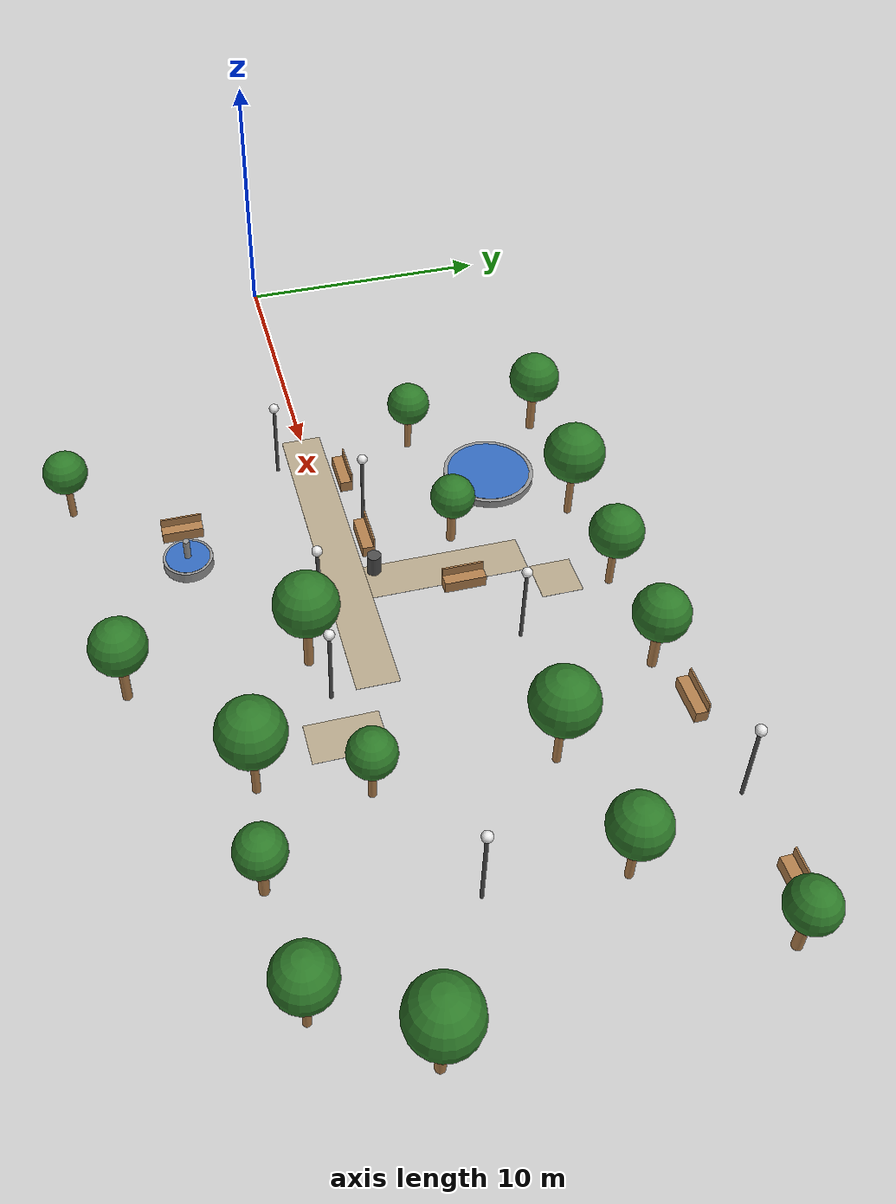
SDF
<sdf version="1.6">
 <world name="default">
  <include><uri>model://sun</uri></include>
  <model name="trees">
   <static>true</static>
   <link name="trunk_0">
    <pose>11.3 4.0 0.8 0 0 0</pose>
    <collision name="collision">
     <geometry><cylinder><radius>0.13</radius><length>1.6</length></cylinder></geometry>
     <surface><friction><ode><mu>0.05</mu><mu2>0.05</mu2></ode></friction></surface>
    </collision>
    <visual name="visual">
     <geometry><cylinder><radius>0.13</radius><length>1.6</length></cylinder></geometry>
     <material>
      <script><uri>file://media/materials/scripts/gazebo.material</uri><name>Gazebo/Wood</name></script>
     </material>
    </visual>
   </link>
   <link name="canopy_0">
    <pose>11.3 4.0 2.1 0 0 0</pose>
    <collision name="collision">
     <geometry><sphere><radius>0.8</radius></sphere></geometry>
     <surface><friction><ode><mu>0.05</mu><mu2>0.05</mu2></ode></friction></surface>
    </collision>
    <visual name="visual">
     <geometry><sphere><radius>0.8</radius></sphere></geometry>
     <material>
      <ambient>0.18 0.48 0.16 1</ambient>
      <diffuse>0.18 0.48 0.16 1</diffuse>
      <specular>0.05 0.05 0.05 1</specular>
     </material>
    </visual>
   </link>
   <link name="trunk_1">
    <pose>11.4 9.0 1.0 0 0 0</pose>
    <collision name="collision">
     <geometry><cylinder><radius>0.16</radius><length>2.0</length></cylinder></geometry>
     <surface><friction><ode><mu>0.05</mu><mu2>0.05</mu2></ode></friction></surface>
    </collision>
    <visual name="visual">
     <geometry><cylinder><radius>0.16</radius><length>2.0</length></cylinder></geometry>
     <material>
      <script><uri>file://media/materials/scripts/gazebo.material</uri><name>Gazebo/Wood</name></script>
     </material>
    </visual>
   </link>
   <link name="canopy_1">
    <pose>11.4 9.0 2.5 0 0 0</pose>
    <collision name="collision">
     <geometry><sphere><radius>0.9500000000000001</radius></sphere></geometry>
     <surface><friction><ode><mu>0.05</mu><mu2>0.05</mu2></ode></friction></surface>
    </collision>
    <visual name="visual">
     <geometry><sphere><radius>0.9500000000000001</radius></sphere></geometry>
     <material>
      <ambient>0.18 0.48 0.16 1</ambient>
      <diffuse>0.18 0.48 0.16 1</diffuse>
      <specular>0.05 0.05 0.05 1</specular>
     </material>
    </visual>
   </link>
   <link name="trunk_2">
    <pose>16.3 8.8 1.2000000000000002 0 0 0</pose>
    <collision name="collision">
     <geometry><cylinder><radius>0.13</radius><length>2.4000000000000004</length></cylinder></geometry>
     <surface><friction><ode><mu>0.05</mu><mu2>0.05</mu2></ode></friction></surface>
    </collision>
    <visual name="visual">
     <geometry><cylinder><radius>0.13</radius><length>2.4000000000000004</length></cylinder></geometry>
     <material>
      <script><uri>file://media/materials/scripts/gazebo.material</uri><name>Gazebo/Wood</name></script>
     </material>
    </visual>
   </link>
   <link name="canopy_2">
    <pose>16.3 8.8 2.9000000000000004 0 0 0</pose>
    <collision name="collision">
     <geometry><sphere><radius>1.1</radius></sphere></geometry>
     <surface><friction><ode><mu>0.05</mu><mu2>0.05</mu2></ode></friction></surface>
    </collision>
    <visual name="visual">
     <geometry><sphere><radius>1.1</radius></sphere></geometry>
     <material>
      <ambient>0.18 0.48 0.16 1</ambient>
      <diffuse>0.18 0.48 0.16 1</diffuse>
      <specular>0.05 0.05 0.05 1</specular>
     </material>
    </visual>
   </link>
   <link name="trunk_3">
    <pose>16.6 4.2 0.8 0 0 0</pose>
    <collision name="collision">
     <geometry><cylinder><radius>0.16</radius><length>1.6</length></cylinder></geometry>
     <surface><friction><ode><mu>0.05</mu><mu2>0.05</mu2></ode></friction></surface>
    </collision>
    <visual name="visual">
     <geometry><cylinder><radius>0.16</radius><length>1.6</length></cylinder></geometry>
     <material>
      <script><uri>file://media/materials/scripts/gazebo.material</uri><name>Gazebo/Wood</name></script>
     </material>
    </visual>
   </link>
   <link name="canopy_3">
    <pose>16.6 4.2 2.1 0 0 0</pose>
    <collision name="collision">
     <geometry><sphere><radius>0.8</radius></sphere></geometry>
     <surface><friction><ode><mu>0.05</mu><mu2>0.05</mu2></ode></friction></surface>
    </collision>
    <visual name="visual">
     <geometry><sphere><radius>0.8</radius></sphere></geometry>
     <material>
      <ambient>0.18 0.48 0.16 1</ambient>
      <diffuse>0.18 0.48 0.16 1</diffuse>
      <specular>0.05 0.05 0.05 1</specular>
     </material>
    </visual>
   </link>
   <link name="trunk_4">
    <pose>20.0 9.0 1.0 0 0 0</pose>
    <collision name="collision">
     <geometry><cylinder><radius>0.13</radius><length>2.0</length></cylinder></geometry>
     <surface><friction><ode><mu>0.05</mu><mu2>0.05</mu2></ode></friction></surface>
    </collision>
    <visual name="visual">
     <geometry><cylinder><radius>0.13</radius><length>2.0</length></cylinder></geometry>
     <material>
      <script><uri>file://media/materials/scripts/gazebo.material</uri><name>Gazebo/Wood</name></script>
     </material>
    </visual>
   </link>
   <link name="canopy_4">
    <pose>20.0 9.0 2.5 0 0 0</pose>
    <collision name="collision">
     <geometry><sphere><radius>0.9500000000000001</radius></sphere></geometry>
     <surface><friction><ode><mu>0.05</mu><mu2>0.05</mu2></ode></friction></surface>
    </collision>
    <visual name="visual">
     <geometry><sphere><radius>0.9500000000000001</radius></sphere></geometry>
     <material>
      <ambient>0.18 0.48 0.16 1</ambient>
      <diffuse>0.18 0.48 0.16 1</diffuse>
      <specular>0.05 0.05 0.05 1</specular>
     </material>
    </visual>
   </link>
   <link name="trunk_5">
    <pose>21.0 -2.0 1.2000000000000002 0 0 0</pose>
    <collision name="collision">
     <geometry><cylinder><radius>0.16</radius><length>2.4000000000000004</length></cylinder></geometry>
     <surface><friction><ode><mu>0.05</mu><mu2>0.05</mu2></ode></friction></surface>
    </collision>
    <visual name="visual">
     <geometry><cylinder><radius>0.16</radius><length>2.4000000000000004</length></cylinder></geometry>
     <material>
      <script><uri>file://media/materials/scripts/gazebo.material</uri><name>Gazebo/Wood</name></script>
     </material>
    </visual>
   </link>
   <link name="canopy_5">
    <pose>21.0 -2.0 2.9000000000000004 0 0 0</pose>
    <collision name="collision">
     <geometry><sphere><radius>1.1</radius></sphere></geometry>
     <surface><friction><ode><mu>0.05</mu><mu2>0.05</mu2></ode></friction></surface>
    </collision>
    <visual name="visual">
     <geometry><sphere><radius>1.1</radius></sphere></geometry>
     <material>
      <ambient>0.18 0.48 0.16 1</ambient>
      <diffuse>0.18 0.48 0.16 1</diffuse>
      <specular>0.05 0.05 0.05 1</specular>
     </material>
    </visual>
   </link>
   <link name="trunk_6">
    <pose>12.0 -9.0 0.8 0 0 0</pose>
    <collision name="collision">
     <geometry><cylinder><radius>0.13</radius><length>1.6</length></cylinder></geometry>
     <surface><friction><ode><mu>0.05</mu><mu2>0.05</mu2></ode></friction></surface>
    </collision>
    <visual name="visual">
     <geometry><cylinder><radius>0.13</radius><length>1.6</length></cylinder></geometry>
     <material>
      <script><uri>file://media/materials/scripts/gazebo.material</uri><name>Gazebo/Wood</name></script>
     </material>
    </visual>
   </link>
   <link name="canopy_6">
    <pose>12.0 -9.0 2.1 0 0 0</pose>
    <collision name="collision">
     <geometry><sphere><radius>0.8</radius></sphere></geometry>
     <surface><friction><ode><mu>0.05</mu><mu2>0.05</mu2></ode></friction></surface>
    </collision>
    <visual name="visual">
     <geometry><sphere><radius>0.8</radius></sphere></geometry>
     <material>
      <ambient>0.18 0.48 0.16 1</ambient>
      <diffuse>0.18 0.48 0.16 1</diffuse>
      <specular>0.05 0.05 0.05 1</specular>
     </material>
    </visual>
   </link>
   <link name="trunk_7">
    <pose>21.2 -8.0 1.2943009958726188 0 0 0</pose>
    <collision name="collision">
     <geometry><cylinder><radius>0.16</radius><length>2.0</length></cylinder></geometry>
     <surface><friction><ode><mu>0.05</mu><mu2>0.05</mu2></ode></friction></surface>
    </collision>
    <visual name="visual">
     <geometry><cylinder><radius>0.16</radius><length>2.0</length></cylinder></geometry>
     <material>
      <script><uri>file://media/materials/scripts/gazebo.material</uri><name>Gazebo/Wood</name></script>
     </material>
    </visual>
   </link>
   <link name="canopy_7">
    <pose>21.2 -8.0 2.794300995872619 0 0 0</pose>
    <collision name="collision">
     <geometry><sphere><radius>0.9500000000000001</radius></sphere></geometry>
     <surface><friction><ode><mu>0.05</mu><mu2>0.05</mu2></ode></friction></surface>
    </collision>
    <visual name="visual">
     <geometry><sphere><radius>0.9500000000000001</radius></sphere></geometry>
     <material>
      <ambient>0.18 0.48 0.16 1</ambient>
      <diffuse>0.18 0.48 0.16 1</diffuse>
      <specular>0.05 0.05 0.05 1</specular>
     </material>
    </visual>
   </link>
   <link name="trunk_8">
    <pose>25.6 -4.6 1.3576661332415842 0 0 0</pose>
    <collision name="collision">
     <geometry><cylinder><radius>0.13</radius><length>2.4000000000000004</length></cylinder></geometry>
     <surface><friction><ode><mu>0.05</mu><mu2>0.05</mu2></ode></friction></surface>
    </collision>
    <visual name="visual">
     <geometry><cylinder><radius>0.13</radius><length>2.4000000000000004</length></cylinder></geometry>
     <material>
      <script><uri>file://media/materials/scripts/gazebo.material</uri><name>Gazebo/Wood</name></script>
     </material>
    </visual>
   </link>
   <link name="canopy_8">
    <pose>25.6 -4.6 3.0576661332415846 0 0 0</pose>
    <collision name="collision">
     <geometry><sphere><radius>1.1</radius></sphere></geometry>
     <surface><friction><ode><mu>0.05</mu><mu2>0.05</mu2></ode></friction></surface>
    </collision>
    <visual name="visual">
     <geometry><sphere><radius>1.1</radius></sphere></geometry>
     <material>
      <ambient>0.18 0.48 0.16 1</ambient>
      <diffuse>0.18 0.48 0.16 1</diffuse>
      <specular>0.05 0.05 0.05 1</specular>
     </material>
    </visual>
   </link>
   <link name="trunk_9">
    <pose>29.0 -5.0 0.9609630261579654 0 0 0</pose>
    <collision name="collision">
     <geometry><cylinder><radius>0.16</radius><length>1.6</length></cylinder></geometry>
     <surface><friction><ode><mu>0.05</mu><mu2>0.05</mu2></ode></friction></surface>
    </collision>
    <visual name="visual">
     <geometry><cylinder><radius>0.16</radius><length>1.6</length></cylinder></geometry>
     <material>
      <script><uri>file://media/materials/scripts/gazebo.material</uri><name>Gazebo/Wood</name></script>
     </material>
    </visual>
   </link>
   <link name="canopy_9">
    <pose>29.0 -5.0 2.2609630261579654 0 0 0</pose>
    <collision name="collision">
     <geometry><sphere><radius>0.8</radius></sphere></geometry>
     <surface><friction><ode><mu>0.05</mu><mu2>0.05</mu2></ode></friction></surface>
    </collision>
    <visual name="visual">
     <geometry><sphere><radius>0.8</radius></sphere></geometry>
     <material>
      <ambient>0.18 0.48 0.16 1</ambient>
      <diffuse>0.18 0.48 0.16 1</diffuse>
      <specular>0.05 0.05 0.05 1</specular>
     </material>
    </visual>
   </link>
   <link name="trunk_10">
    <pose>33.0 -4.6 1.0379301743406173 0 0 0</pose>
    <collision name="collision">
     <geometry><cylinder><radius>0.13</radius><length>2.0</length></cylinder></geometry>
     <surface><friction><ode><mu>0.05</mu><mu2>0.05</mu2></ode></friction></surface>
    </collision>
    <visual name="visual">
     <geometry><cylinder><radius>0.13</radius><length>2.0</length></cylinder></geometry>
     <material>
      <script><uri>file://media/materials/scripts/gazebo.material</uri><name>Gazebo/Wood</name></script>
     </material>
    </visual>
   </link>
   <link name="canopy_10">
    <pose>33.0 -4.6 2.5379301743406173 0 0 0</pose>
    <collision name="collision">
     <geometry><sphere><radius>0.9500000000000001</radius></sphere></geometry>
     <surface><friction><ode><mu>0.05</mu><mu2>0.05</mu2></ode></friction></surface>
    </collision>
    <visual name="visual">
     <geometry><sphere><radius>0.9500000000000001</radius></sphere></geometry>
     <material>
      <ambient>0.18 0.48 0.16 1</ambient>
      <diffuse>0.18 0.48 0.16 1</diffuse>
      <specular>0.05 0.05 0.05 1</specular>
     </material>
    </visual>
   </link>
   <link name="trunk_11">
    <pose>35.0 -1.5 1.2000000000000002 0 0 0</pose>
    <collision name="collision">
     <geometry><cylinder><radius>0.16</radius><length>2.4000000000000004</length></cylinder></geometry>
     <surface><friction><ode><mu>0.05</mu><mu2>0.05</mu2></ode></friction></surface>
    </collision>
    <visual name="visual">
     <geometry><cylinder><radius>0.16</radius><length>2.4000000000000004</length></cylinder></geometry>
     <material>
      <script><uri>file://media/materials/scripts/gazebo.material</uri><name>Gazebo/Wood</name></script>
     </material>
    </visual>
   </link>
   <link name="canopy_11">
    <pose>35.0 -1.5 2.9000000000000004 0 0 0</pose>
    <collision name="collision">
     <geometry><sphere><radius>1.1</radius></sphere></geometry>
     <surface><friction><ode><mu>0.05</mu><mu2>0.05</mu2></ode></friction></surface>
    </collision>
    <visual name="visual">
     <geometry><sphere><radius>1.1</radius></sphere></geometry>
     <material>
      <ambient>0.18 0.48 0.16 1</ambient>
      <diffuse>0.18 0.48 0.16 1</diffuse>
      <specular>0.05 0.05 0.05 1</specular>
     </material>
    </visual>
   </link>
   <link name="trunk_12">
    <pose>26.5 -1.2 0.8 0 0 0</pose>
    <collision name="collision">
     <geometry><cylinder><radius>0.13</radius><length>1.6</length></cylinder></geometry>
     <surface><friction><ode><mu>0.05</mu><mu2>0.05</mu2></ode></friction></surface>
    </collision>
    <visual name="visual">
     <geometry><cylinder><radius>0.13</radius><length>1.6</length></cylinder></geometry>
     <material>
      <script><uri>file://media/materials/scripts/gazebo.material</uri><name>Gazebo/Wood</name></script>
     </material>
    </visual>
   </link>
   <link name="canopy_12">
    <pose>26.5 -1.2 2.1 0 0 0</pose>
    <collision name="collision">
     <geometry><sphere><radius>0.8</radius></sphere></geometry>
     <surface><friction><ode><mu>0.05</mu><mu2>0.05</mu2></ode></friction></surface>
    </collision>
    <visual name="visual">
     <geometry><sphere><radius>0.8</radius></sphere></geometry>
     <material>
      <ambient>0.18 0.48 0.16 1</ambient>
      <diffuse>0.18 0.48 0.16 1</diffuse>
      <specular>0.05 0.05 0.05 1</specular>
     </material>
    </visual>
   </link>
   <link name="trunk_13">
    <pose>24.2 8.8 1.5 0 0 0</pose>
    <collision name="collision">
     <geometry><cylinder><radius>0.16</radius><length>2.0</length></cylinder></geometry>
     <surface><friction><ode><mu>0.05</mu><mu2>0.05</mu2></ode></friction></surface>
    </collision>
    <visual name="visual">
     <geometry><cylinder><radius>0.16</radius><length>2.0</length></cylinder></geometry>
     <material>
      <script><uri>file://media/materials/scripts/gazebo.material</uri><name>Gazebo/Wood</name></script>
     </material>
    </visual>
   </link>
   <link name="canopy_13">
    <pose>24.2 8.8 3.0 0 0 0</pose>
    <collision name="collision">
     <geometry><sphere><radius>0.9500000000000001</radius></sphere></geometry>
     <surface><friction><ode><mu>0.05</mu><mu2>0.05</mu2></ode></friction></surface>
    </collision>
    <visual name="visual">
     <geometry><sphere><radius>0.9500000000000001</radius></sphere></geometry>
     <material>
      <ambient>0.18 0.48 0.16 1</ambient>
      <diffuse>0.18 0.48 0.16 1</diffuse>
      <specular>0.05 0.05 0.05 1</specular>
     </material>
    </visual>
   </link>
   <link name="trunk_14">
    <pose>27.0 4.5 1.7000000000000002 0 0 0</pose>
    <collision name="collision">
     <geometry><cylinder><radius>0.13</radius><length>2.4000000000000004</length></cylinder></geometry>
     <surface><friction><ode><mu>0.05</mu><mu2>0.05</mu2></ode></friction></surface>
    </collision>
    <visual name="visual">
     <geometry><cylinder><radius>0.13</radius><length>2.4000000000000004</length></cylinder></geometry>
     <material>
      <script><uri>file://media/materials/scripts/gazebo.material</uri><name>Gazebo/Wood</name></script>
     </material>
    </visual>
   </link>
   <link name="canopy_14">
    <pose>27.0 4.5 3.4000000000000004 0 0 0</pose>
    <collision name="collision">
     <geometry><sphere><radius>1.1</radius></sphere></geometry>
     <surface><friction><ode><mu>0.05</mu><mu2>0.05</mu2></ode></friction></surface>
    </collision>
    <visual name="visual">
     <geometry><sphere><radius>1.1</radius></sphere></geometry>
     <material>
      <ambient>0.18 0.48 0.16 1</ambient>
      <diffuse>0.18 0.48 0.16 1</diffuse>
      <specular>0.05 0.05 0.05 1</specular>
     </material>
    </visual>
   </link>
   <link name="trunk_15">
    <pose>34.6 8.6 1.8 0 0 0</pose>
    <collision name="collision">
     <geometry><cylinder><radius>0.16</radius><length>1.6</length></cylinder></geometry>
     <surface><friction><ode><mu>0.05</mu><mu2>0.05</mu2></ode></friction></surface>
    </collision>
    <visual name="visual">
     <geometry><cylinder><radius>0.16</radius><length>1.6</length></cylinder></geometry>
     <material>
      <script><uri>file://media/materials/scripts/gazebo.material</uri><name>Gazebo/Wood</name></script>
     </material>
    </visual>
   </link>
   <link name="canopy_15">
    <pose>34.6 8.6 3.1 0 0 0</pose>
    <collision name="collision">
     <geometry><sphere><radius>0.8</radius></sphere></geometry>
     <surface><friction><ode><mu>0.05</mu><mu2>0.05</mu2></ode></friction></surface>
    </collision>
    <visual name="visual">
     <geometry><sphere><radius>0.8</radius></sphere></geometry>
     <material>
      <ambient>0.18 0.48 0.16 1</ambient>
      <diffuse>0.18 0.48 0.16 1</diffuse>
      <specular>0.05 0.05 0.05 1</specular>
     </material>
    </visual>
   </link>
   <link name="trunk_16">
    <pose>31.5 5.0 2.0 0 0 0</pose>
    <collision name="collision">
     <geometry><cylinder><radius>0.13</radius><length>2.0</length></cylinder></geometry>
     <surface><friction><ode><mu>0.05</mu><mu2>0.05</mu2></ode></friction></surface>
    </collision>
    <visual name="visual">
     <geometry><cylinder><radius>0.13</radius><length>2.0</length></cylinder></geometry>
     <material>
      <script><uri>file://media/materials/scripts/gazebo.material</uri><name>Gazebo/Wood</name></script>
     </material>
    </visual>
   </link>
   <link name="canopy_16">
    <pose>31.5 5.0 3.5 0 0 0</pose>
    <collision name="collision">
     <geometry><sphere><radius>0.9500000000000001</radius></sphere></geometry>
     <surface><friction><ode><mu>0.05</mu><mu2>0.05</mu2></ode></friction></surface>
    </collision>
    <visual name="visual">
     <geometry><sphere><radius>0.9500000000000001</radius></sphere></geometry>
     <material>
      <ambient>0.18 0.48 0.16 1</ambient>
      <diffuse>0.18 0.48 0.16 1</diffuse>
      <specular>0.05 0.05 0.05 1</specular>
     </material>
    </visual>
   </link>
  </model>
  <model name="furniture">
   <static>true</static>
   <link name="bench_0">
    <pose>12.5 1.1 0.22 0 0 0.0</pose>
    <collision name="collision">
     <geometry><box><size>1.5 0.45 0.44</size></box></geometry>
     <surface><friction><ode><mu>0.05</mu><mu2>0.05</mu2></ode></friction></surface>
    </collision>
    <visual name="visual">
     <geometry><box><size>1.5 0.45 0.44</size></box></geometry>
     <material>
      <script><uri>file://media/materials/scripts/gazebo.material</uri><name>Gazebo/Wood</name></script>
     </material>
    </visual>
   </link>
   <link name="bench_0_back">
    <pose>12.5 1.3 0.6 0 0 0.0</pose>
    <collision name="collision">
     <geometry><box><size>1.5 0.06 0.35</size></box></geometry>
     <surface><friction><ode><mu>0.05</mu><mu2>0.05</mu2></ode></friction></surface>
    </collision>
    <visual name="visual">
     <geometry><box><size>1.5 0.06 0.35</size></box></geometry>
     <material>
      <script><uri>file://media/materials/scripts/gazebo.material</uri><name>Gazebo/Wood</name></script>
     </material>
    </visual>
   </link>
   <link name="bench_1">
    <pose>16.0 1.1 0.22 0 0 0.0</pose>
    <collision name="collision">
     <geometry><box><size>1.5 0.45 0.44</size></box></geometry>
     <surface><friction><ode><mu>0.05</mu><mu2>0.05</mu2></ode></friction></surface>
    </collision>
    <visual name="visual">
     <geometry><box><size>1.5 0.45 0.44</size></box></geometry>
     <material>
      <script><uri>file://media/materials/scripts/gazebo.material</uri><name>Gazebo/Wood</name></script>
     </material>
    </visual>
   </link>
   <link name="bench_1_back">
    <pose>16.0 1.3 0.6 0 0 0.0</pose>
    <collision name="collision">
     <geometry><box><size>1.5 0.06 0.35</size></box></geometry>
     <surface><friction><ode><mu>0.05</mu><mu2>0.05</mu2></ode></friction></surface>
    </collision>
    <visual name="visual">
     <geometry><box><size>1.5 0.06 0.35</size></box></geometry>
     <material>
      <script><uri>file://media/materials/scripts/gazebo.material</uri><name>Gazebo/Wood</name></script>
     </material>
    </visual>
   </link>
   <link name="bench_2">
    <pose>18.9 4.0 0.22 0 0 1.5707963267948966</pose>
    <collision name="collision">
     <geometry><box><size>1.5 0.45 0.44</size></box></geometry>
     <surface><friction><ode><mu>0.05</mu><mu2>0.05</mu2></ode></friction></surface>
    </collision>
    <visual name="visual">
     <geometry><box><size>1.5 0.45 0.44</size></box></geometry>
     <material>
      <script><uri>file://media/materials/scripts/gazebo.material</uri><name>Gazebo/Wood</name></script>
     </material>
    </visual>
   </link>
   <link name="bench_2_back">
    <pose>18.7 4.0 0.6 0 0 1.5707963267948966</pose>
    <collision name="collision">
     <geometry><box><size>1.5 0.06 0.35</size></box></geometry>
     <surface><friction><ode><mu>0.05</mu><mu2>0.05</mu2></ode></friction></surface>
    </collision>
    <visual name="visual">
     <geometry><box><size>1.5 0.06 0.35</size></box></geometry>
     <material>
      <script><uri>file://media/materials/scripts/gazebo.material</uri><name>Gazebo/Wood</name></script>
     </material>
    </visual>
   </link>
   <link name="bench_3">
    <pose>13.5 -5.2 -0.38 0 0 1.5707963267948966</pose>
    <collision name="collision">
     <geometry><box><size>1.5 0.45 0.44</size></box></geometry>
     <surface><friction><ode><mu>0.05</mu><mu2>0.05</mu2></ode></friction></surface>
    </collision>
    <visual name="visual">
     <geometry><box><size>1.5 0.45 0.44</size></box></geometry>
     <material>
      <script><uri>file://media/materials/scripts/gazebo.material</uri><name>Gazebo/Wood</name></script>
     </material>
    </visual>
   </link>
   <link name="bench_3_back">
    <pose>13.3 -5.2 0.0 0 0 1.5707963267948966</pose>
    <collision name="collision">
     <geometry><box><size>1.5 0.06 0.35</size></box></geometry>
     <surface><friction><ode><mu>0.05</mu><mu2>0.05</mu2></ode></friction></surface>
    </collision>
    <visual name="visual">
     <geometry><box><size>1.5 0.06 0.35</size></box></geometry>
     <material>
      <script><uri>file://media/materials/scripts/gazebo.material</uri><name>Gazebo/Wood</name></script>
     </material>
    </visual>
   </link>
   <link name="bench_4">
    <pose>26.0 9.4 0.72 0 0 0.0</pose>
    <collision name="collision">
     <geometry><box><size>1.5 0.45 0.44</size></box></geometry>
     <surface><friction><ode><mu>0.05</mu><mu2>0.05</mu2></ode></friction></surface>
    </collision>
    <visual name="visual">
     <geometry><box><size>1.5 0.45 0.44</size></box></geometry>
     <material>
      <script><uri>file://media/materials/scripts/gazebo.material</uri><name>Gazebo/Wood</name></script>
     </material>
    </visual>
   </link>
   <link name="bench_4_back">
    <pose>26.0 9.6 1.1 0 0 0.0</pose>
    <collision name="collision">
     <geometry><box><size>1.5 0.06 0.35</size></box></geometry>
     <surface><friction><ode><mu>0.05</mu><mu2>0.05</mu2></ode></friction></surface>
    </collision>
    <visual name="visual">
     <geometry><box><size>1.5 0.06 0.35</size></box></geometry>
     <material>
      <script><uri>file://media/materials/scripts/gazebo.material</uri><name>Gazebo/Wood</name></script>
     </material>
    </visual>
   </link>
   <link name="bench_5">
    <pose>33.0 9.4 1.22 0 0 0.0</pose>
    <collision name="collision">
     <geometry><box><size>1.5 0.45 0.44</size></box></geometry>
     <surface><friction><ode><mu>0.05</mu><mu2>0.05</mu2></ode></friction></surface>
    </collision>
    <visual name="visual">
     <geometry><box><size>1.5 0.45 0.44</size></box></geometry>
     <material>
      <script><uri>file://media/materials/scripts/gazebo.material</uri><name>Gazebo/Wood</name></script>
     </material>
    </visual>
   </link>
   <link name="bench_5_back">
    <pose>33.0 9.6 1.6 0 0 0.0</pose>
    <collision name="collision">
     <geometry><box><size>1.5 0.06 0.35</size></box></geometry>
     <surface><friction><ode><mu>0.05</mu><mu2>0.05</mu2></ode></friction></surface>
    </collision>
    <visual name="visual">
     <geometry><box><size>1.5 0.06 0.35</size></box></geometry>
     <material>
      <script><uri>file://media/materials/scripts/gazebo.material</uri><name>Gazebo/Wood</name></script>
     </material>
    </visual>
   </link>
   <link name="lamp_0">
    <pose>11.5 -1.2 1.5 0 0 0</pose>
    <collision name="collision">
     <geometry><cylinder><radius>0.06</radius><length>3.0</length></cylinder></geometry>
     <surface><friction><ode><mu>0.05</mu><mu2>0.05</mu2></ode></friction></surface>
    </collision>
    <visual name="visual">
     <geometry><cylinder><radius>0.06</radius><length>3.0</length></cylinder></geometry>
     <material>
      <script><uri>file://media/materials/scripts/gazebo.material</uri><name>Gazebo/DarkGrey</name></script>
     </material>
    </visual>
   </link>
   <link name="lamp_0_head">
    <pose>11.5 -1.2 3.1 0 0 0</pose>
    <visual name="visual">
     <geometry><sphere><radius>0.18</radius></sphere></geometry>
     <material>
      <script><uri>file://media/materials/scripts/gazebo.material</uri><name>Gazebo/White</name></script>
     </material>
    </visual>
   </link>
   <link name="lamp_1">
    <pose>15.0 1.3 1.5 0 0 0</pose>
    <collision name="collision">
     <geometry><cylinder><radius>0.06</radius><length>3.0</length></cylinder></geometry>
     <surface><friction><ode><mu>0.05</mu><mu2>0.05</mu2></ode></friction></surface>
    </collision>
    <visual name="visual">
     <geometry><cylinder><radius>0.06</radius><length>3.0</length></cylinder></geometry>
     <material>
      <script><uri>file://media/materials/scripts/gazebo.material</uri><name>Gazebo/DarkGrey</name></script>
     </material>
    </visual>
   </link>
   <link name="lamp_1_head">
    <pose>15.0 1.3 3.1 0 0 0</pose>
    <visual name="visual">
     <geometry><sphere><radius>0.18</radius></sphere></geometry>
     <material>
      <script><uri>file://media/materials/scripts/gazebo.material</uri><name>Gazebo/White</name></script>
     </material>
    </visual>
   </link>
   <link name="lamp_2">
    <pose>19.0 -1.2 1.5 0 0 0</pose>
    <collision name="collision">
     <geometry><cylinder><radius>0.06</radius><length>3.0</length></cylinder></geometry>
     <surface><friction><ode><mu>0.05</mu><mu2>0.05</mu2></ode></friction></surface>
    </collision>
    <visual name="visual">
     <geometry><cylinder><radius>0.06</radius><length>3.0</length></cylinder></geometry>
     <material>
      <script><uri>file://media/materials/scripts/gazebo.material</uri><name>Gazebo/DarkGrey</name></script>
     </material>
    </visual>
   </link>
   <link name="lamp_2_head">
    <pose>19.0 -1.2 3.1 0 0 0</pose>
    <visual name="visual">
     <geometry><sphere><radius>0.18</radius></sphere></geometry>
     <material>
      <script><uri>file://media/materials/scripts/gazebo.material</uri><name>Gazebo/White</name></script>
     </material>
    </visual>
   </link>
   <link name="lamp_3">
    <pose>21.6 5.2 1.5 0 0 0</pose>
    <collision name="collision">
     <geometry><cylinder><radius>0.06</radius><length>3.0</length></cylinder></geometry>
     <surface><friction><ode><mu>0.05</mu><mu2>0.05</mu2></ode></friction></surface>
    </collision>
    <visual name="visual">
     <geometry><cylinder><radius>0.06</radius><length>3.0</length></cylinder></geometry>
     <material>
      <script><uri>file://media/materials/scripts/gazebo.material</uri><name>Gazebo/DarkGrey</name></script>
     </material>
    </visual>
   </link>
   <link name="lamp_3_head">
    <pose>21.6 5.2 3.1 0 0 0</pose>
    <visual name="visual">
     <geometry><sphere><radius>0.18</radius></sphere></geometry>
     <material>
      <script><uri>file://media/materials/scripts/gazebo.material</uri><name>Gazebo/White</name></script>
     </material>
    </visual>
   </link>
   <link name="lamp_4">
    <pose>22.6 -1.6 1.5 0 0 0</pose>
    <collision name="collision">
     <geometry><cylinder><radius>0.06</radius><length>3.0</length></cylinder></geometry>
     <surface><friction><ode><mu>0.05</mu><mu2>0.05</mu2></ode></friction></surface>
    </collision>
    <visual name="visual">
     <geometry><cylinder><radius>0.06</radius><length>3.0</length></cylinder></geometry>
     <material>
      <script><uri>file://media/materials/scripts/gazebo.material</uri><name>Gazebo/DarkGrey</name></script>
     </material>
    </visual>
   </link>
   <link name="lamp_4_head">
    <pose>22.6 -1.6 3.1 0 0 0</pose>
    <visual name="visual">
     <geometry><sphere><radius>0.18</radius></sphere></geometry>
     <material>
      <script><uri>file://media/materials/scripts/gazebo.material</uri><name>Gazebo/White</name></script>
     </material>
    </visual>
   </link>
   <link name="lamp_5">
    <pose>30.6 1.0 1.5 0 0 0</pose>
    <collision name="collision">
     <geometry><cylinder><radius>0.06</radius><length>3.0</length></cylinder></geometry>
     <surface><friction><ode><mu>0.05</mu><mu2>0.05</mu2></ode></friction></surface>
    </collision>
    <visual name="visual">
     <geometry><cylinder><radius>0.06</radius><length>3.0</length></cylinder></geometry>
     <material>
      <script><uri>file://media/materials/scripts/gazebo.material</uri><name>Gazebo/DarkGrey</name></script>
     </material>
    </visual>
   </link>
   <link name="lamp_5_head">
    <pose>30.6 1.0 3.1 0 0 0</pose>
    <visual name="visual">
     <geometry><sphere><radius>0.18</radius></sphere></geometry>
     <material>
      <script><uri>file://media/materials/scripts/gazebo.material</uri><name>Gazebo/White</name></script>
     </material>
    </visual>
   </link>
   <link name="lamp_6">
    <pose>29.5 9.5 2.0 0 0 0</pose>
    <collision name="collision">
     <geometry><cylinder><radius>0.06</radius><length>3.0</length></cylinder></geometry>
     <surface><friction><ode><mu>0.05</mu><mu2>0.05</mu2></ode></friction></surface>
    </collision>
    <visual name="visual">
     <geometry><cylinder><radius>0.06</radius><length>3.0</length></cylinder></geometry>
     <material>
      <script><uri>file://media/materials/scripts/gazebo.material</uri><name>Gazebo/DarkGrey</name></script>
     </material>
    </visual>
   </link>
   <link name="lamp_6_head">
    <pose>29.5 9.5 3.6 0 0 0</pose>
    <visual name="visual">
     <geometry><sphere><radius>0.18</radius></sphere></geometry>
     <material>
      <script><uri>file://media/materials/scripts/gazebo.material</uri><name>Gazebo/White</name></script>
     </material>
    </visual>
   </link>
   <link name="bin_0">
    <pose>17.5 1.1 0.4 0 0 0</pose>
    <collision name="collision">
     <geometry><cylinder><radius>0.25</radius><length>0.8</length></cylinder></geometry>
     <surface><friction><ode><mu>0.05</mu><mu2>0.05</mu2></ode></friction></surface>
    </collision>
    <visual name="visual">
     <geometry><cylinder><radius>0.25</radius><length>0.8</length></cylinder></geometry>
     <material>
      <script><uri>file://media/materials/scripts/gazebo.material</uri><name>Gazebo/DarkGrey</name></script>
     </material>
    </visual>
   </link>
   <link name="bin_1">
    <pose>23.0 9.4 0.9 0 0 0</pose>
    <collision name="collision">
     <geometry><cylinder><radius>0.25</radius><length>0.8</length></cylinder></geometry>
     <surface><friction><ode><mu>0.05</mu><mu2>0.05</mu2></ode></friction></surface>
    </collision>
    <visual name="visual">
     <geometry><cylinder><radius>0.25</radius><length>0.8</length></cylinder></geometry>
     <material>
      <script><uri>file://media/materials/scripts/gazebo.material</uri><name>Gazebo/DarkGrey</name></script>
     </material>
    </visual>
   </link>
  </model>
  <model name="water">
   <static>true</static>
   <link name="pond_rim">
    <pose>13.8 6.5 0.15 0 0 0</pose>
    <collision name="collision">
     <geometry><cylinder><radius>1.7</radius><length>0.3</length></cylinder></geometry>
     <surface><friction><ode><mu>0.05</mu><mu2>0.05</mu2></ode></friction></surface>
    </collision>
    <visual name="visual">
     <geometry><cylinder><radius>1.7</radius><length>0.3</length></cylinder></geometry>
     <material>
      <script><uri>file://media/materials/scripts/gazebo.material</uri><name>Gazebo/Grey</name></script>
     </material>
    </visual>
   </link>
   <link name="pond_water">
    <pose>13.8 6.5 0.305 0 0 0</pose>
    <visual name="visual">
     <geometry><cylinder><radius>1.55</radius><length>0.01</length></cylinder></geometry>
     <material>
      <ambient>0.2 0.42 0.75 1</ambient>
      <diffuse>0.2 0.42 0.75 1</diffuse>
      <specular>0.05 0.05 0.05 1</specular>
     </material>
    </visual>
   </link>
   <link name="fountain_basin">
    <pose>15.0 -5.2 -0.39999999999999997 0 0 0</pose>
    <collision name="collision">
     <geometry><cylinder><radius>0.9</radius><length>0.4</length></cylinder></geometry>
     <surface><friction><ode><mu>0.05</mu><mu2>0.05</mu2></ode></friction></surface>
    </collision>
    <visual name="visual">
     <geometry><cylinder><radius>0.9</radius><length>0.4</length></cylinder></geometry>
     <material>
      <script><uri>file://media/materials/scripts/gazebo.material</uri><name>Gazebo/Grey</name></script>
     </material>
    </visual>
   </link>
   <link name="fountain_water">
    <pose>15.0 -5.2 -0.19499999999999995 0 0 0</pose>
    <visual name="visual">
     <geometry><cylinder><radius>0.8</radius><length>0.01</length></cylinder></geometry>
     <material>
      <ambient>0.2 0.42 0.75 1</ambient>
      <diffuse>0.2 0.42 0.75 1</diffuse>
      <specular>0.05 0.05 0.05 1</specular>
     </material>
    </visual>
   </link>
   <link name="fountain_column">
    <pose>15.0 -5.2 0.20000000000000007 0 0 0</pose>
    <collision name="collision">
     <geometry><cylinder><radius>0.12</radius><length>0.8</length></cylinder></geometry>
     <surface><friction><ode><mu>0.05</mu><mu2>0.05</mu2></ode></friction></surface>
    </collision>
    <visual name="visual">
     <geometry><cylinder><radius>0.12</radius><length>0.8</length></cylinder></geometry>
     <material>
      <script><uri>file://media/materials/scripts/gazebo.material</uri><name>Gazebo/Grey</name></script>
     </material>
    </visual>
   </link>
  </model>
  <model name="paths">
   <static>true</static>
   <link name="path_0">
    <pose>16.25 0.0 0.004 0 0 0.0</pose>
    <visual name="visual">
     <geometry><box><size>12.5 1.5 0.006</size></box></geometry>
     <material>
      <ambient>0.72 0.66 0.55 1</ambient>
      <diffuse>0.72 0.66 0.55 1</diffuse>
      <specular>0.05 0.05 0.05 1</specular>
     </material>
    </visual>
   </link>
   <link name="path_1">
    <pose>18.0 3.6 0.004 0 0 1.5707963267948966</pose>
    <visual name="visual">
     <geometry><box><size>5.7 1.5 0.006</size></box></geometry>
     <material>
      <ambient>0.72 0.66 0.55 1</ambient>
      <diffuse>0.72 0.66 0.55 1</diffuse>
      <specular>0.05 0.05 0.05 1</specular>
     </material>
    </visual>
   </link>
   <link name="path_2">
    <pose>19.4 7.25 0.004 0 0 0.0</pose>
    <visual name="visual">
     <geometry><box><size>1.5 1.5 0.006</size></box></geometry>
     <material>
      <ambient>0.72 0.66 0.55 1</ambient>
      <diffuse>0.72 0.66 0.55 1</diffuse>
      <specular>0.05 0.05 0.05 1</specular>
     </material>
    </visual>
   </link>
   <link name="path_3">
    <pose>24.25 -1.5 0.004 0 0 1.5707963267948966</pose>
    <visual name="visual">
     <geometry><box><size>2.5 1.5 0.006</size></box></geometry>
     <material>
      <ambient>0.72 0.66 0.55 1</ambient>
      <diffuse>0.72 0.66 0.55 1</diffuse>
      <specular>0.05 0.05 0.05 1</specular>
     </material>
    </visual>
   </link>
  </model>
 </world>
</sdf>
